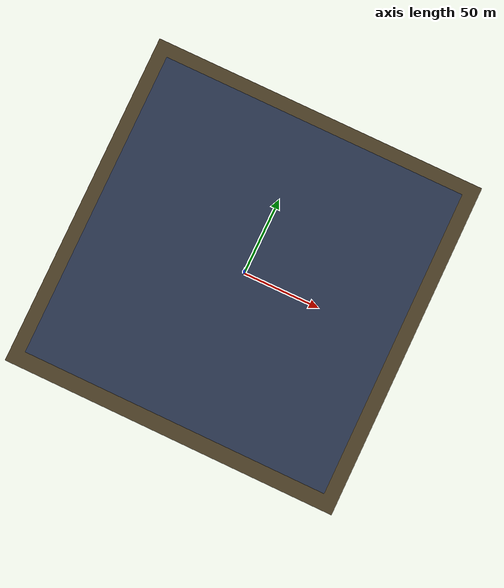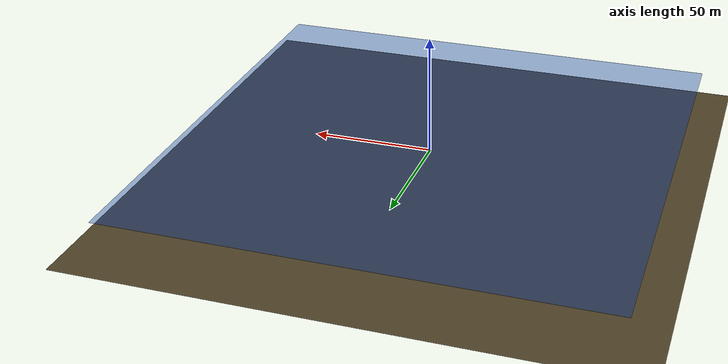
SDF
<?xml version="1.0"?>
<sdf version="1.6">
  <world name="underwater">

    <!-- Nötr yüzme: yerçekimi sıfır -->
    <gravity>0 0 0</gravity>

    <physics name="default" type="ode">
      <max_step_size>0.004</max_step_size>
      <real_time_factor>1.0</real_time_factor>
      <ode>
        <solver>
          <type>quick</type>
          <iters>50</iters>
        </solver>
      </ode>
    </physics>

    <!-- Sualtı ışıklandırması -->
    <scene>
      <ambient>0.05 0.1 0.2 1</ambient>
      <background>0.0 0.05 0.15 1</background>
      <shadows>false</shadows>
      <fog>
        <color>0.0 0.05 0.15 1</color>
        <type>linear</type>
        <start>5</start>
        <end>30</end>
        <density>0.05</density>
      </fog>
    </scene>

    <light name="sun" type="directional">
      <cast_shadows>false</cast_shadows>
      <pose>0 0 10 0 0 0</pose>
      <diffuse>0.3 0.5 0.7 1</diffuse>
      <specular>0.1 0.2 0.3 1</specular>
      <direction>0.1 0.1 -1</direction>
    </light>

    <!-- Deniz tabanı -->
    <model name="seabed">
      <static>true</static>
      <link name="seabed_link">
        <collision name="col">
          <geometry>
            <plane>
              <normal>0 0 1</normal>
              <size>200 200</size>
            </plane>
          </geometry>
        </collision>
        <visual name="vis">
          <geometry>
            <plane>
              <normal>0 0 1</normal>
              <size>200 200</size>
            </plane>
          </geometry>
          <material>
            <ambient>0.2 0.15 0.1 1</ambient>
            <diffuse>0.3 0.25 0.15 1</diffuse>
          </material>
        </visual>
        <pose>0 0 -10 0 0 0</pose>
      </link>
    </model>

    <!-- Gazebo ROS State plugin — /get_entity_state servisi -->
    <plugin name="gazebo_ros_state" filename="libgazebo_ros_state.so">
      <ros>
        <namespace>/</namespace>
      </ros>
      <update_rate>50.0</update_rate>
    </plugin>

    <!-- Su yüzeyi (görsel) -->
    <model name="water_surface">
      <static>true</static>
      <link name="surface_link">
        <visual name="vis">
          <geometry>
            <plane>
              <normal>0 0 1</normal>
              <size>200 200</size>
            </plane>
          </geometry>
          <material>
            <ambient>0.0 0.1 0.4 0.4</ambient>
            <diffuse>0.0 0.2 0.6 0.4</diffuse>
          </material>
        </visual>
        <pose>0 0 5 0 0 0</pose>
      </link>
    </model>

  </world>
</sdf>
